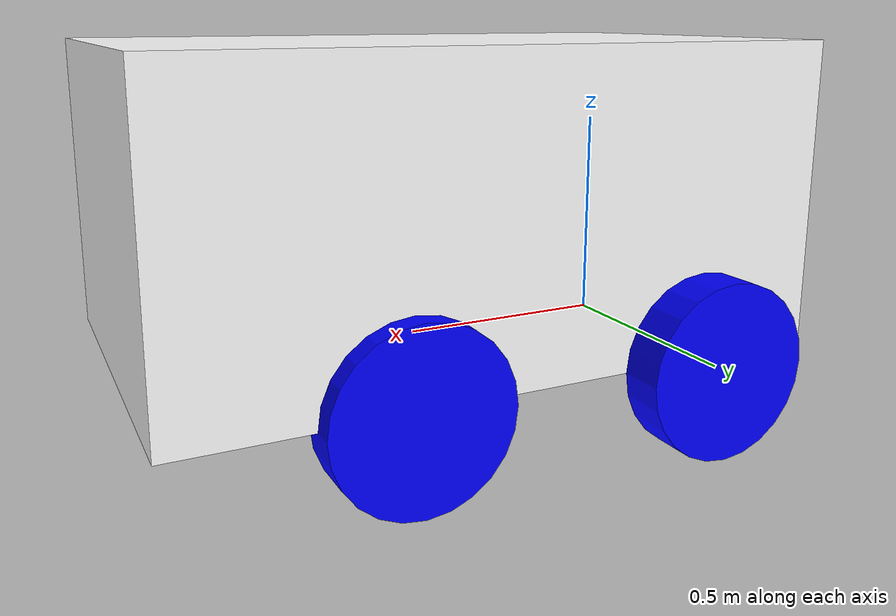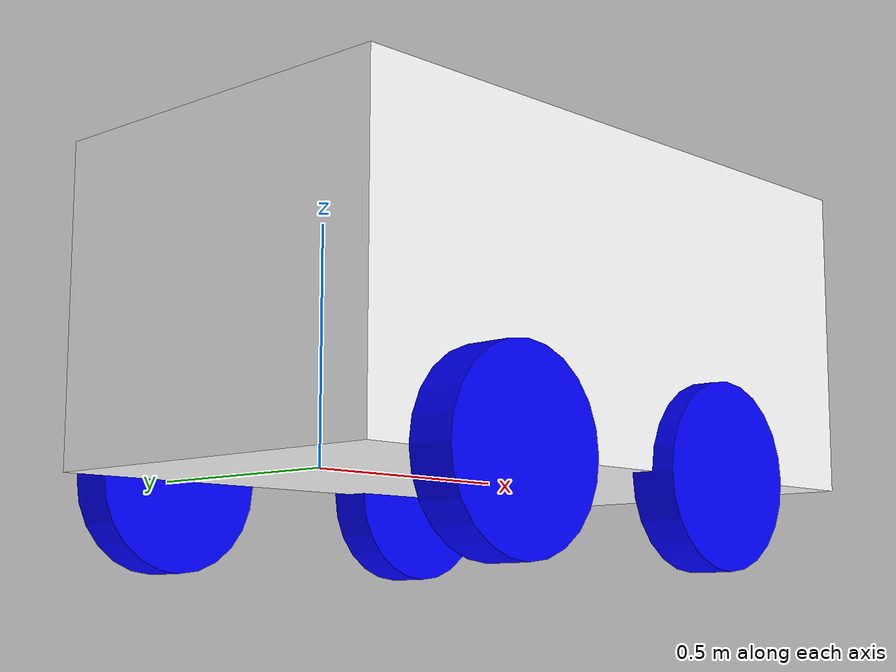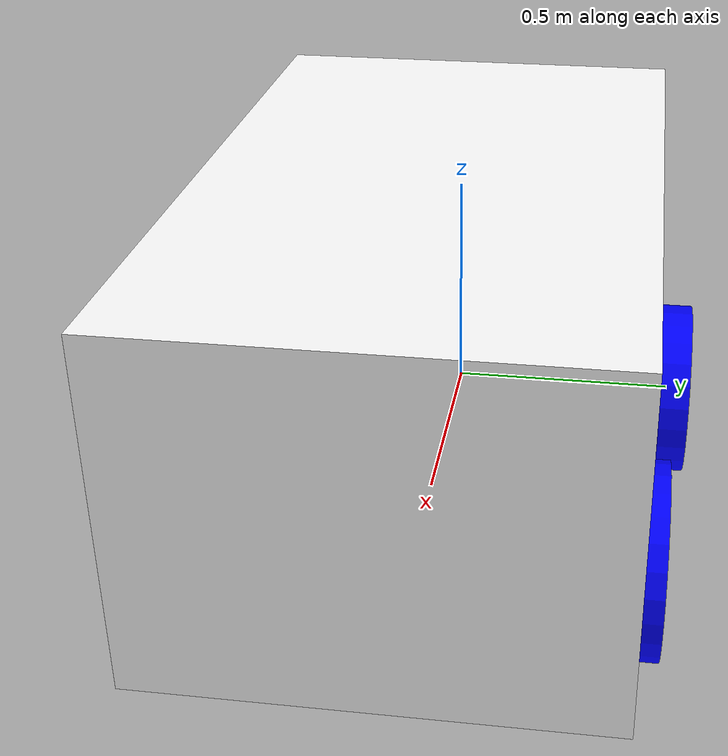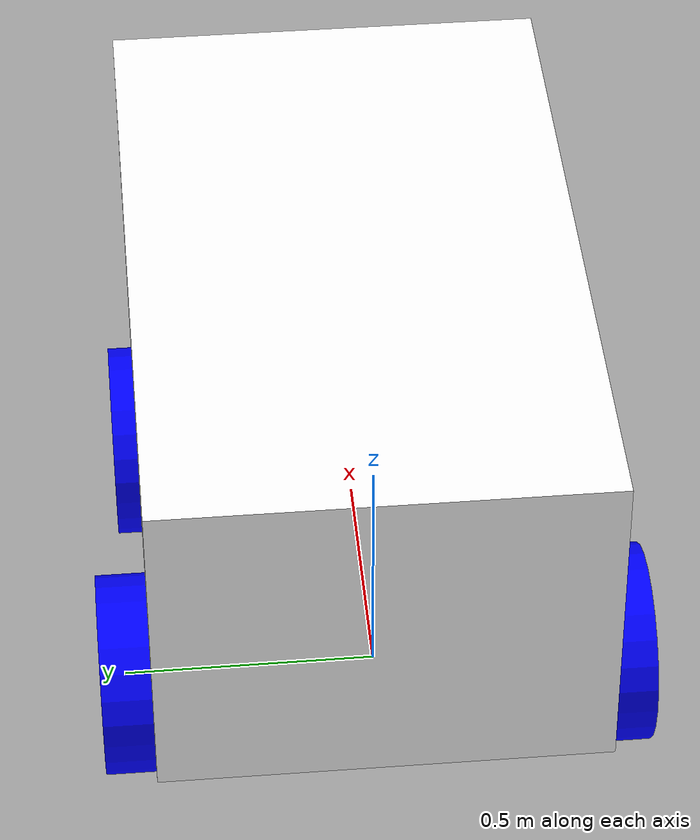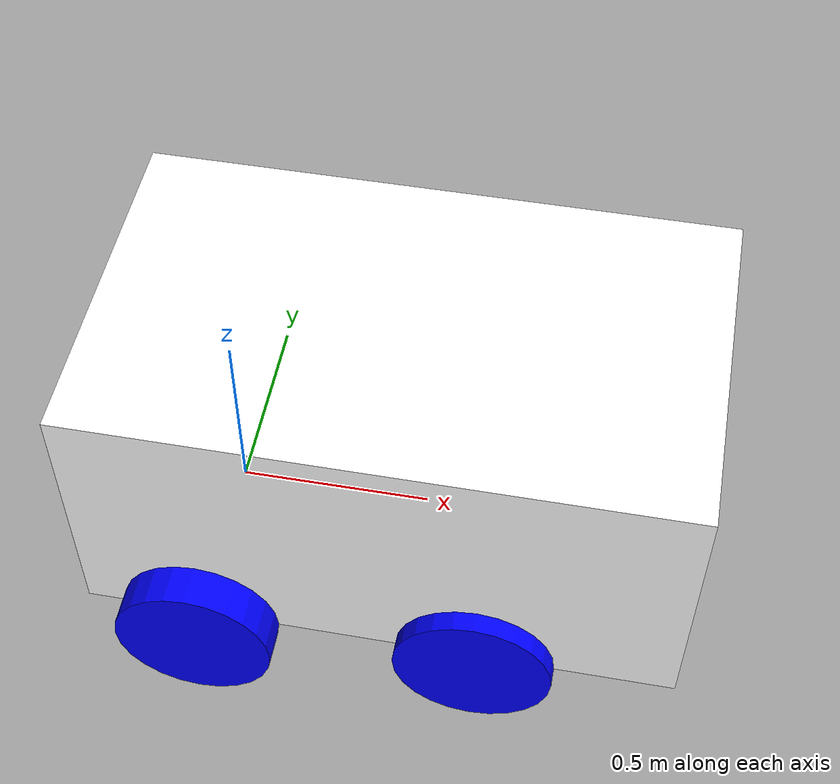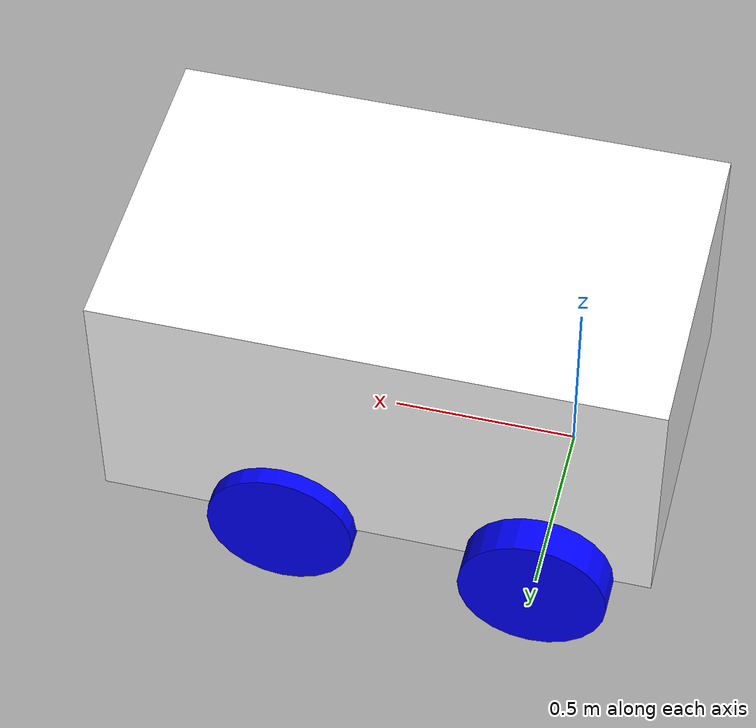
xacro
<?xml version="1.0"?>
<robot xmlns:xacro="http://www.ros.org/wiki/xacro">

    <xacro:macro name="inertial_sphere" params="mass radius *origin">
        <inertial>
            <xacro:insert_block name="origin"/>
            <mass value="${mass}" />
            <inertia ixx="${(2/5) * mass * (radius*radius)}" ixy="0.0" ixz="0.0"
                    iyy="${(2/5) * mass * (radius*radius)}" iyz="0.0"
                    izz="${(2/5) * mass * (radius*radius)}" />
        </inertial>
    </xacro:macro>

    <xacro:macro name="inertial_box" params="mass x y z *origin">
        <inertial>
            <xacro:insert_block name="origin"/>
            <mass value="${mass}" />
            <inertia ixx="${(1/12) * mass * (y*y+z*z)}" ixy="0.0" ixz="0.0"
                    iyy="${(1/12) * mass * (x*x+z*z)}" iyz="0.0"
                    izz="${(1/12) * mass * (x*x+y*y)}" />
        </inertial>
    </xacro:macro>

    <xacro:macro name="inertial_cylinder" params="mass length radius *origin">
        <inertial>
            <xacro:insert_block name="origin"/>
            <mass value="${mass}" />
            <inertia ixx="${(1/12) * mass * (3*radius*radius + length*length)}" ixy="0.0" ixz="0.0"
                    iyy="${(1/12) * mass * (3*radius*radius + length*length)}" iyz="0.0"
                    izz="${(1/2) * mass * (radius*radius)}" />
        </inertial>
    </xacro:macro>

    <material name="blue">
      <color rgba="0 0 1 1"/>  <!-- Blue color -->
    </material>

    <material name="white">
      <color rgba="1 1 1 1"/>  <!-- White color -->
    </material>

    <!-- BASE LINK -->
    <link name="base_link">
    </link>

    <!-- CHASSIS LINK -->
    <joint name="chassis_joint" type="fixed">
        <parent link="base_link"/>
        <child link="chassis" />
        <origin xyz="-0.3 0 0"/>
    </joint>

    <link name="chassis">
        <visual>
            <origin xyz="0.75 0 0.35"/>
            <geometry>
                <box size="1.5 0.9 0.7"/>
            </geometry>
            <material name="white"/>
        </visual>
        <collision>
            <origin xyz="0.75 0 0.35"/>
            <geometry>
                <box size="1.5 0.9 0.7"/>
            </geometry>
            <material name="white"/>
        </collision>
        <xacro:inertial_box mass="20" x= "1.5" y="0.9" z="0.7">
            <origin xyz="0.75 0 0.35"/>
        </xacro:inertial_box>
    </link>

    <!-- LEFT BACK WHEEL LINK -->
    <joint name="left_back_wheel_joint" type="continuous">
        <origin xyz="0 0.5 0" rpy="-${pi/2} 0 0"/>
        <axis xyz="0 0 1"/>
        <parent link="base_link" />
        <child link="left_back_wheel" />
    </joint>

    <link name="left_back_wheel">
        <visual>
            <geometry>
                <cylinder radius="0.2" length="0.1"/>
            </geometry>
            <material name="blue"/>
        </visual>
        <collision>
            <geometry>
                <cylinder radius="0.2" length="0.1"/>
            </geometry>
            <material name="blue"/>
        </collision>
        <xacro:inertial_cylinder mass="1" length="0.1" radius="0.2">
            <origin xyz="0 0 0" rpy= "0 0 0"/>
        </xacro:inertial_cylinder>
    </link>

    <!-- RIGHT BACK WHEEL LINK -->
    <joint name="right_back_wheel_joint" type="continuous">
        <origin xyz="0 -0.5 0" rpy="-${pi/2} 0 0"/>
        <axis xyz="0 0 1"/>
        <parent link="base_link" />
        <child link="right_back_wheel" />
    </joint>

    <link name="right_back_wheel">
        <visual>
            <geometry>
                <cylinder radius="0.2" length="0.1"/>
            </geometry>
            <material name="blue"/>
        </visual>
        <collision>
            <geometry>
                <cylinder radius="0.2" length="0.1"/>
            </geometry>
            <material name="blue"/>
        </collision>
         <xacro:inertial_cylinder mass="1" length="0.1" radius="0.2">
            <origin xyz="0 0 0" rpy= "0 0 0"/>
        </xacro:inertial_cylinder>
    </link>

    <!-- LEFT FRONT WHEEL LINK (Steering) -->
    <joint name="left_front_wheel_joint" type="revolute">
        <origin xyz="1.0 0.45 0" rpy="-${pi/2} 0 0"/>
        <axis xyz="0 0 1"/>
        <parent link="chassis"/>
        <child link="left_front_wheel"/>
        <limit effort="10" velocity="1.0" lower="-0.5" upper="0.5"/>
    </joint>

    <link name="left_front_wheel">
        <visual>
            <geometry>
                <cylinder radius="0.2" length="0.1"/>
            </geometry>
            <material name="blue"/>
        </visual>
        <collision>
            <geometry>
                <cylinder radius="0.2" length="0.1"/>
            </geometry>
            <material name="blue"/>
        </collision>
        <xacro:inertial_cylinder mass="1" length="0.1" radius="0.2">
            <origin xyz="0 0 0" rpy= "0 0 0"/>
        </xacro:inertial_cylinder>
    </link>

    <!-- RIGHT FRONT WHEEL LINK (Steering) -->
    <joint name="right_front_wheel_joint" type="revolute">
        <origin xyz="1.0 -0.45 0" rpy="-${pi/2} 0 0"/>
        <axis xyz="0 0 1"/>
        <parent link="chassis"/>
        <child link="right_front_wheel"/>
        <limit effort="10" velocity="1.0" lower="-0.5" upper="0.5"/>
    </joint>

    <link name="right_front_wheel">
        <visual>
            <geometry>
                <cylinder radius="0.2" length="0.1"/>
            </geometry>
            <material name="blue"/>
        </visual>
        <collision>
            <geometry>
                <cylinder radius="0.2" length="0.1"/>
            </geometry>
            <material name="blue"/>
        </collision>
        <xacro:inertial_cylinder mass="1" length="0.1" radius="0.2">
            <origin xyz="0 0 0" rpy= "0 0 0"/>
        </xacro:inertial_cylinder>
    </link>

</robot>
